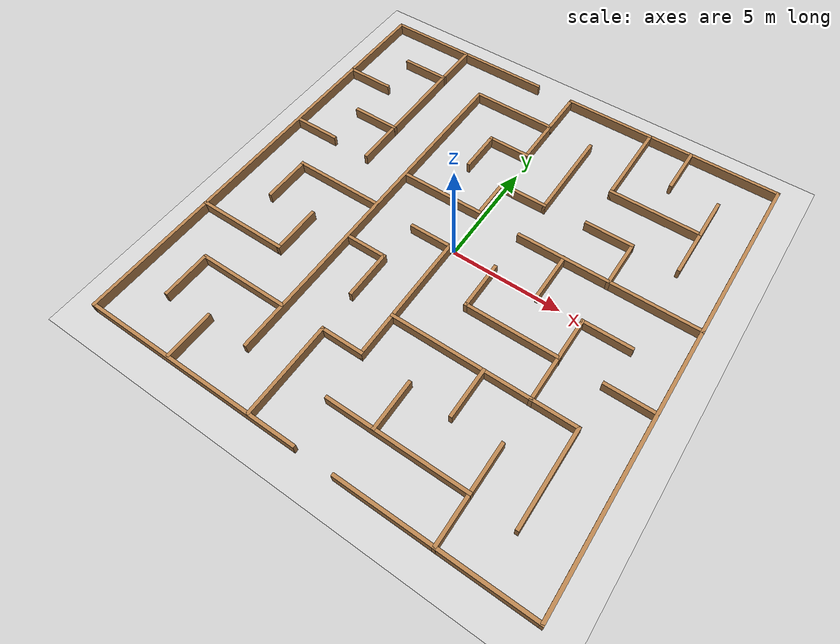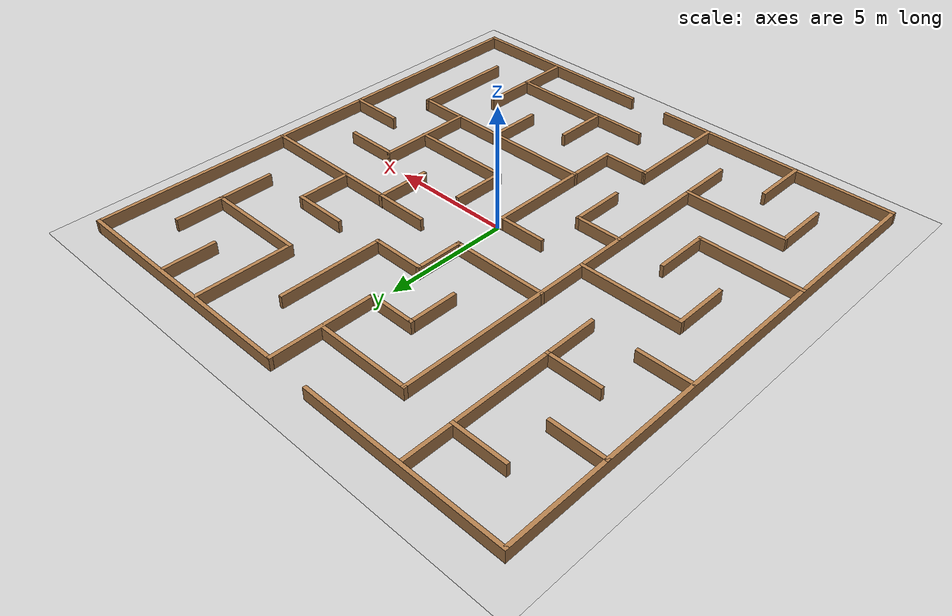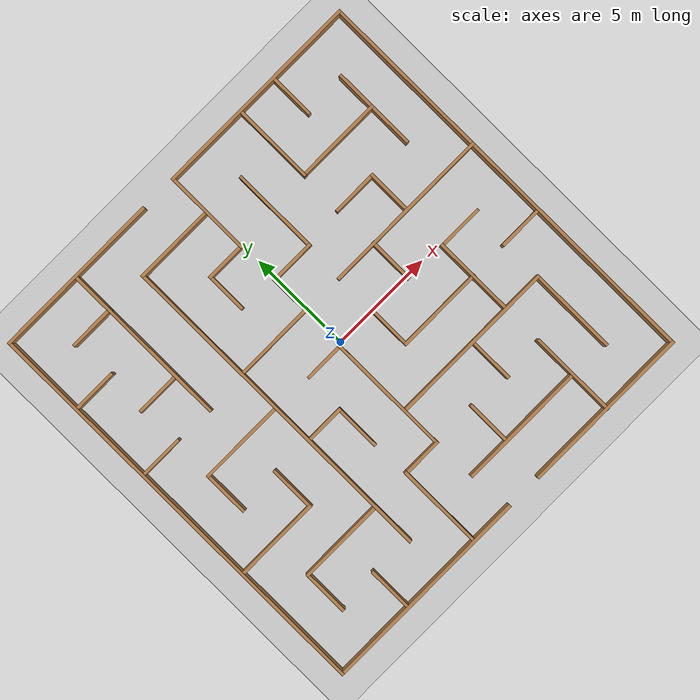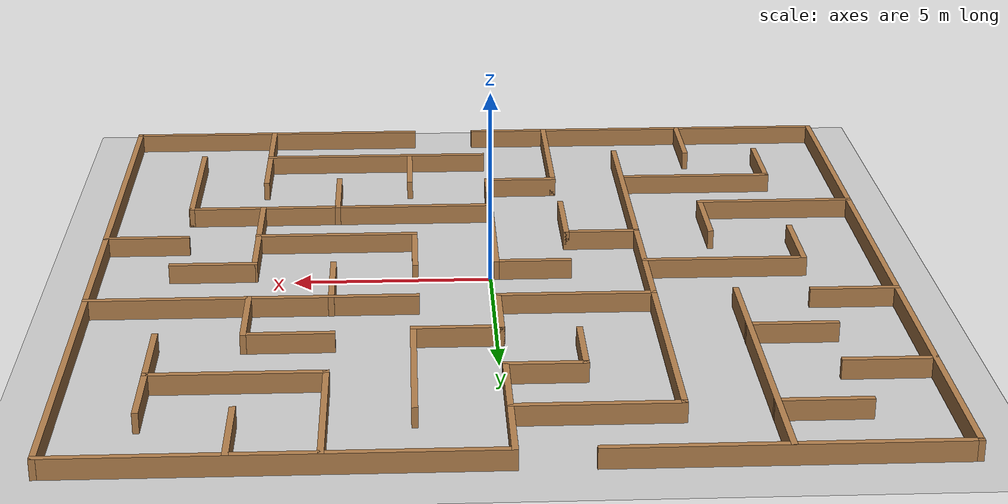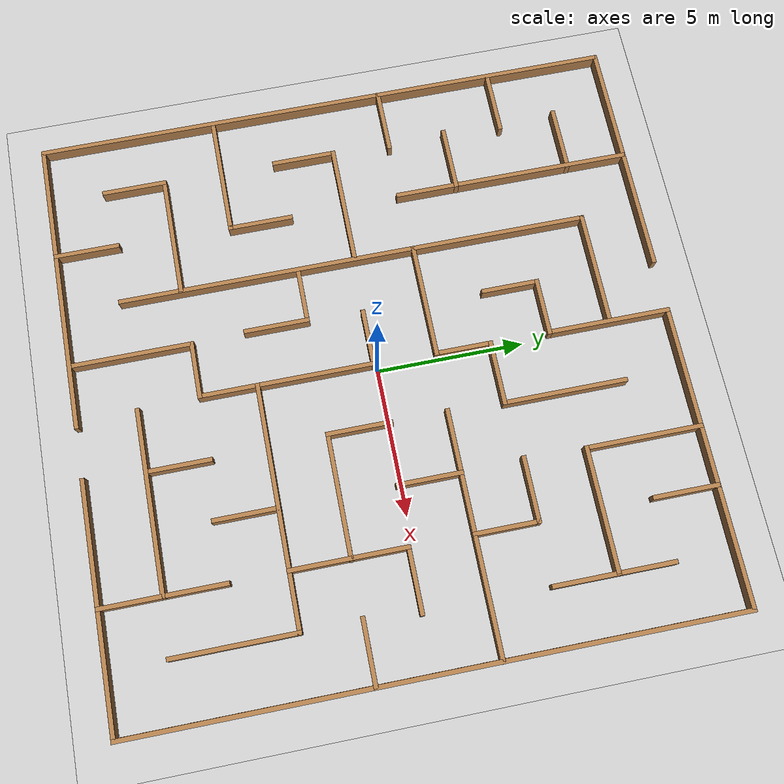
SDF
<?xml version = "1.0" ?>
<!-- Author : Eech Hsiao -->
<!-- hsiaoy4@mcmaster.ca -->

<sdf version = "1.4">

  <world name = "default">

    <include>
      <uri>model://maze_short_textured</uri>
    </include>

    <include>
      <uri>model://ground_plane</uri>
    </include>

    <include>
      <uri>model://sun</uri>
    </include>

    <gui fullscreen ='0'>
      <camera name = 'user_camera'>
        <pose>0.174956 -21.691200 18.658085 0.000000 0.747997 1.567990</pose>
        <view_controller>orbit</view_controller>
      </camera>
    </gui>

  </world>
</sdf>

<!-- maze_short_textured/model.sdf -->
<sdf version='1.6'>
  <model name='maze_short_textured'>
    <pose frame=''>-0.0025 -0.018499 0 0 -0 0</pose>
    <link name='Wall_13'>
      <collision name='Wall_13_Collision'>
        <geometry>
          <box>
            <size>8.25 0.15 0.5</size>
          </box>
        </geometry>
        <pose frame=''>0 0 0.25 0 -0 0</pose>
      </collision>
      <visual name='Wall_13_Visual'>
        <pose frame=''>0 0 0.25 0 -0 0</pose>
        <geometry>
          <box>
            <size>8.25 0.15 0.5</size>
          </box>
        </geometry>
        <material>
          <script>
            <uri>file://media/materials/scripts/gazebo.material</uri>
            <name>Gazebo/Wood</name>
          </script>
          <ambient>1 1 1 1</ambient>
        </material>
        <meta>
          <layer>0</layer>
        </meta>
      </visual>
      <pose frame=''>-5.9605 10.0595 0 0 -0 0</pose>
    </link>
    <link name='Wall_15'>
      <collision name='Wall_15_Collision'>
        <geometry>
          <box>
            <size>10.25 0.15 0.5</size>
          </box>
        </geometry>
        <pose frame=''>0 0 0.25 0 -0 0</pose>
      </collision>
      <visual name='Wall_15_Visual'>
        <pose frame=''>0 0 0.25 0 -0 0</pose>
        <geometry>
          <box>
            <size>10.25 0.15 0.5</size>
          </box>
        </geometry>
        <material>
          <script>
            <uri>file://media/materials/scripts/gazebo.material</uri>
            <name>Gazebo/Wood</name>
          </script>
          <ambient>1 1 1 1</ambient>
        </material>
        <meta>
          <layer>0</layer>
        </meta>
      </visual>
      <pose frame=''>4.9565 10.0435 0 0 -0 3.14159</pose>
    </link>
    <link name='Wall_16'>
      <collision name='Wall_16_Collision'>
        <geometry>
          <box>
            <size>4.25 0.15 0.5</size>
          </box>
        </geometry>
        <pose frame=''>0 0 0.25 0 -0 0</pose>
      </collision>
      <visual name='Wall_16_Visual'>
        <pose frame=''>0 0 0.25 0 -0 0</pose>
        <geometry>
          <box>
            <size>4.25 0.15 0.5</size>
          </box>
        </geometry>
        <material>
          <script>
            <uri>file://media/materials/scripts/gazebo.material</uri>
            <name>Gazebo/Wood</name>
          </script>
          <ambient>1 1 1 1</ambient>
        </material>
        <meta>
          <layer>0</layer>
        </meta>
      </visual>
      <pose frame=''>-0.0935 7.9935 0 0 -0 -1.5708</pose>
    </link>
    <link name='Wall_17'>
      <collision name='Wall_17_Collision'>
        <geometry>
          <box>
            <size>2 0.15 0.5</size>
          </box>
        </geometry>
        <pose frame=''>0 0 0.25 0 -0 0</pose>
      </collision>
      <visual name='Wall_17_Visual'>
        <pose frame=''>0 0 0.25 0 -0 0</pose>
        <geometry>
          <box>
            <size>2 0.15 0.5</size>
          </box>
        </geometry>
        <material>
          <script>
            <uri>file://media/materials/scripts/gazebo.material</uri>
            <name>Gazebo/Wood</name>
          </script>
          <ambient>1 1 1 1</ambient>
        </material>
        <meta>
          <layer>0</layer>
        </meta>
      </visual>
      <pose frame=''>-1.0185 5.9435 0 0 -0 3.14159</pose>
    </link>
    <link name='Wall_18'>
      <collision name='Wall_18_Collision'>
        <geometry>
          <box>
            <size>2 0.15 0.5</size>
          </box>
        </geometry>
        <pose frame=''>0 0 0.25 0 -0 0</pose>
      </collision>
      <visual name='Wall_18_Visual'>
        <pose frame=''>0 0 0.25 0 -0 0</pose>
        <geometry>
          <box>
            <size>2 0.15 0.5</size>
          </box>
        </geometry>
        <material>
          <script>
            <uri>file://media/materials/scripts/gazebo.material</uri>
            <name>Gazebo/Wood</name>
          </script>
          <ambient>1 1 1 1</ambient>
        </material>
        <meta>
          <layer>0</layer>
        </meta>
      </visual>
      <pose frame=''>-1.9435 5.0185 0 0 -0 -1.5708</pose>
    </link>
    <link name='Wall_2'>
      <collision name='Wall_2_Collision'>
        <geometry>
          <box>
            <size>20.25 0.15 0.5</size>
          </box>
        </geometry>
        <pose frame=''>0 0 0.25 0 -0 0</pose>
      </collision>
      <visual name='Wall_2_Visual'>
        <pose frame=''>0 0 0.25 0 -0 0</pose>
        <geometry>
          <box>
            <size>20.25 0.15 0.5</size>
          </box>
        </geometry>
        <material>
          <script>
            <uri>file://media/materials/scripts/gazebo.material</uri>
            <name>Gazebo/Wood</name>
          </script>
          <ambient>1 1 1 1</ambient>
        </material>
        <meta>
          <layer>0</layer>
        </meta>
      </visual>
      <pose frame=''>-10.0105 0.009499 0 0 -0 1.5708</pose>
    </link>
    <link name='Wall_20'>
      <collision name='Wall_20_Collision'>
        <geometry>
          <box>
            <size>8.25 0.15 0.5</size>
          </box>
        </geometry>
        <pose frame=''>0 0 0.25 0 -0 0</pose>
      </collision>
      <visual name='Wall_20_Visual'>
        <pose frame=''>0 0 0.25 0 -0 0</pose>
        <geometry>
          <box>
            <size>8.25 0.15 0.5</size>
          </box>
        </geometry>
        <material>
          <script>
            <uri>file://media/materials/scripts/gazebo.material</uri>
            <name>Gazebo/Wood</name>
          </script>
          <ambient>1 1 1 1</ambient>
        </material>
        <meta>
          <layer>0</layer>
        </meta>
      </visual>
      <pose frame=''>-6.0045 6.0065 0 0 -0 -1.5708</pose>
    </link>
    <link name='Wall_28'>
      <collision name='Wall_28_Collision'>
        <geometry>
          <box>
            <size>2.25 0.15 0.5</size>
          </box>
        </geometry>
        <pose frame=''>0 0 0.25 0 -0 0</pose>
      </collision>
      <visual name='Wall_28_Visual'>
        <pose frame=''>0 0 0.25 0 -0 0</pose>
        <geometry>
          <box>
            <size>2.25 0.15 0.5</size>
          </box>
        </geometry>
        <material>
          <script>
            <uri>file://media/materials/scripts/gazebo.material</uri>
            <name>Gazebo/Wood</name>
          </script>
          <ambient>1 1 1 1</ambient>
        </material>
        <meta>
          <layer>0</layer>
        </meta>
      </visual>
      <pose frame=''>-7.0515 8.0235 0 0 -0 3.14159</pose>
    </link>
    <link name='Wall_30'>
      <collision name='Wall_30_Collision'>
        <geometry>
          <box>
            <size>2.25 0.15 0.5</size>
          </box>
        </geometry>
        <pose frame=''>0 0 0.25 0 -0 0</pose>
      </collision>
      <visual name='Wall_30_Visual'>
        <pose frame=''>0 0 0.25 0 -0 0</pose>
        <geometry>
          <box>
            <size>2.25 0.15 0.5</size>
          </box>
        </geometry>
        <material>
          <script>
            <uri>file://media/materials/scripts/gazebo.material</uri>
            <name>Gazebo/Wood</name>
          </script>
          <ambient>1 1 1 1</ambient>
        </material>
        <meta>
          <layer>0</layer>
        </meta>
      </visual>
      <pose frame=''>-7.0495 4.0155 0 0 -0 3.14159</pose>
    </link>
    <link name='Wall_32'>
      <collision name='Wall_32_Collision'>
        <geometry>
          <box>
            <size>2.25 0.15 0.5</size>
          </box>
        </geometry>
        <pose frame=''>0 0 0.25 0 -0 0</pose>
      </collision>
      <visual name='Wall_32_Visual'>
        <pose frame=''>0 0 0.25 0 -0 0</pose>
        <geometry>
          <box>
            <size>2.25 0.15 0.5</size>
          </box>
        </geometry>
        <material>
          <script>
            <uri>file://media/materials/scripts/gazebo.material</uri>
            <name>Gazebo/Wood</name>
          </script>
          <ambient>1 1 1 1</ambient>
        </material>
        <meta>
          <layer>0</layer>
        </meta>
      </visual>
      <pose frame=''>-8.9485 6.0295 0 0 -0 0</pose>
    </link>
    <link name='Wall_34'>
      <collision name='Wall_34_Collision'>
        <geometry>
          <box>
            <size>2.25 0.15 0.5</size>
          </box>
        </geometry>
        <pose frame=''>0 0 0.25 0 -0 0</pose>
      </collision>
      <visual name='Wall_34_Visual'>
        <pose frame=''>0 0 0.25 0 -0 0</pose>
        <geometry>
          <box>
            <size>2.25 0.15 0.5</size>
          </box>
        </geometry>
        <material>
          <script>
            <uri>file://media/materials/scripts/gazebo.material</uri>
            <name>Gazebo/Wood</name>
          </script>
          <ambient>1 1 1 1</ambient>
        </material>
        <meta>
          <layer>0</layer>
        </meta>
      </visual>
      <pose frame=''>-8.9585 2.0095 0 0 -0 0</pose>
    </link>
    <link name='Wall_36'>
      <collision name='Wall_36_Collision'>
        <geometry>
          <box>
            <size>4.25 0.15 0.5</size>
          </box>
        </geometry>
        <pose frame=''>0 0 0.25 0 -0 0</pose>
      </collision>
      <visual name='Wall_36_Visual'>
        <pose frame=''>0 0 0.25 0 -0 0</pose>
        <geometry>
          <box>
            <size>4.25 0.15 0.5</size>
          </box>
        </geometry>
        <material>
          <script>
            <uri>file://media/materials/scripts/gazebo.material</uri>
            <name>Gazebo/Wood</name>
          </script>
          <ambient>1 1 1 1</ambient>
        </material>
        <meta>
          <layer>0</layer>
        </meta>
      </visual>
      <pose frame=''>-7.9585 -3.9925 0 0 -0 0</pose>
    </link>
    <link name='Wall_37'>
      <collision name='Wall_37_Collision'>
        <geometry>
          <box>
            <size>2.25 0.15 0.5</size>
          </box>
        </geometry>
        <pose frame=''>0 0 0.25 0 -0 0</pose>
      </collision>
      <visual name='Wall_37_Visual'>
        <pose frame=''>0 0 0.25 0 -0 0</pose>
        <geometry>
          <box>
            <size>2.25 0.15 0.5</size>
          </box>
        </geometry>
        <material>
          <script>
            <uri>file://media/materials/scripts/gazebo.material</uri>
            <name>Gazebo/Wood</name>
          </script>
          <ambient>1 1 1 1</ambient>
        </material>
        <meta>
          <layer>0</layer>
        </meta>
      </visual>
      <pose frame=''>-5.9085 -2.9425 0 0 -0 1.5708</pose>
    </link>
    <link name='Wall_4'>
      <collision name='Wall_4_Collision'>
        <geometry>
          <box>
            <size>10.25 0.15 0.5</size>
          </box>
        </geometry>
        <pose frame=''>0 0 0.25 0 -0 0</pose>
      </collision>
      <visual name='Wall_4_Visual'>
        <pose frame=''>0 0 0.25 0 -0 0</pose>
        <geometry>
          <box>
            <size>10.25 0.15 0.5</size>
          </box>
        </geometry>
        <material>
          <script>
            <uri>file://media/materials/scripts/gazebo.material</uri>
            <name>Gazebo/Wood</name>
          </script>
          <ambient>1 1 1 1</ambient>
        </material>
        <meta>
          <layer>0</layer>
        </meta>
      </visual>
      <pose frame=''>-4.9605 -10.0405 0 0 -0 0</pose>
    </link>
    <link name='Wall_41'>
      <collision name='Wall_41_Collision'>
        <geometry>
          <box>
            <size>4 0.15 0.5</size>
          </box>
        </geometry>
        <pose frame=''>0 0 0.25 0 -0 0</pose>
      </collision>
      <visual name='Wall_41_Visual'>
        <pose frame=''>0 0 0.25 0 -0 0</pose>
        <geometry>
          <box>
            <size>4 0.15 0.5</size>
          </box>
        </geometry>
        <material>
          <script>
            <uri>file://media/materials/scripts/gazebo.material</uri>
            <name>Gazebo/Wood</name>
          </script>
          <ambient>1 1 1 1</ambient>
        </material>
        <meta>
          <layer>0</layer>
        </meta>
      </visual>
      <pose frame=''>-2.0185 8.0325 0 0 -0 3.14159</pose>
    </link>
    <link name='Wall_42'>
      <collision name='Wall_42_Collision'>
        <geometry>
          <box>
            <size>16.25 0.15 0.5</size>
          </box>
        </geometry>
        <pose frame=''>0 0 0.25 0 -0 0</pose>
      </collision>
      <visual name='Wall_42_Visual'>
        <pose frame=''>0 0 0.25 0 -0 0</pose>
        <geometry>
          <box>
            <size>16.25 0.15 0.5</size>
          </box>
        </geometry>
        <material>
          <script>
            <uri>file://media/materials/scripts/gazebo.material</uri>
            <name>Gazebo/Wood</name>
          </script>
          <ambient>1 1 1 1</ambient>
        </material>
        <meta>
          <layer>0</layer>
        </meta>
      </visual>
      <pose frame=''>-3.9435 -0.017501 0 0 -0 -1.5708</pose>
    </link>
    <link name='Wall_44'>
      <collision name='Wall_44_Collision'>
        <geometry>
          <box>
            <size>4.25 0.15 0.5</size>
          </box>
        </geometry>
        <pose frame=''>0 0 0.25 0 -0 0</pose>
      </collision>
      <visual name='Wall_44_Visual'>
        <pose frame=''>0 0 0.25 0 -0 0</pose>
        <geometry>
          <box>
            <size>4.25 0.15 0.5</size>
          </box>
        </geometry>
        <material>
          <script>
            <uri>file://media/materials/scripts/gazebo.material</uri>
            <name>Gazebo/Wood</name>
          </script>
          <ambient>1 1 1 1</ambient>
        </material>
        <meta>
          <layer>0</layer>
        </meta>
      </visual>
      <pose frame=''>-6.0055 -6.0065 0 0 -0 3.14159</pose>
    </link>
    <link name='Wall_45'>
      <collision name='Wall_45_Collision'>
        <geometry>
          <box>
            <size>2.25 0.15 0.5</size>
          </box>
        </geometry>
        <pose frame=''>0 0 0.25 0 -0 0</pose>
      </collision>
      <visual name='Wall_45_Visual'>
        <pose frame=''>0 0 0.25 0 -0 0</pose>
        <geometry>
          <box>
            <size>2.25 0.15 0.5</size>
          </box>
        </geometry>
        <material>
          <script>
            <uri>file://media/materials/scripts/gazebo.material</uri>
            <name>Gazebo/Wood</name>
          </script>
          <ambient>1 1 1 1</ambient>
        </material>
        <meta>
          <layer>0</layer>
        </meta>
      </visual>
      <pose frame=''>-8.0555 -7.0565 0 0 -0 -1.5708</pose>
    </link>
    <link name='Wall_47'>
      <collision name='Wall_47_Collision'>
        <geometry>
          <box>
            <size>2.25 0.15 0.5</size>
          </box>
        </geometry>
        <pose frame=''>0 0 0.25 0 -0 0</pose>
      </collision>
      <visual name='Wall_47_Visual'>
        <pose frame=''>0 0 0.25 0 -0 0</pose>
        <geometry>
          <box>
            <size>2.25 0.15 0.5</size>
          </box>
        </geometry>
        <material>
          <script>
            <uri>file://media/materials/scripts/gazebo.material</uri>
            <name>Gazebo/Wood</name>
          </script>
          <ambient>1 1 1 1</ambient>
        </material>
        <meta>
          <layer>0</layer>
        </meta>
      </visual>
      <pose frame=''>-6.0065 -8.9795 0 0 -0 1.5708</pose>
    </link>
    <link name='Wall_49'>
      <collision name='Wall_49_Collision'>
        <geometry>
          <box>
            <size>4.25 0.15 0.5</size>
          </box>
        </geometry>
        <pose frame=''>0 0 0.25 0 -0 0</pose>
      </collision>
      <visual name='Wall_49_Visual'>
        <pose frame=''>0 0 0.25 0 -0 0</pose>
        <geometry>
          <box>
            <size>4.25 0.15 0.5</size>
          </box>
        </geometry>
        <material>
          <script>
            <uri>file://media/materials/scripts/gazebo.material</uri>
            <name>Gazebo/Wood</name>
          </script>
          <ambient>1 1 1 1</ambient>
        </material>
        <meta>
          <layer>0</layer>
        </meta>
      </visual>
      <pose frame=''>-5.9985 0.011499 0 0 -0 3.14159</pose>
    </link>
    <link name='Wall_50'>
      <collision name='Wall_50_Collision'>
        <geometry>
          <box>
            <size>2.25 0.15 0.5</size>
          </box>
        </geometry>
        <pose frame=''>0 0 0.25 0 -0 0</pose>
      </collision>
      <visual name='Wall_50_Visual'>
        <pose frame=''>0 0 0.25 0 -0 0</pose>
        <geometry>
          <box>
            <size>2.25 0.15 0.5</size>
          </box>
        </geometry>
        <material>
          <script>
            <uri>file://media/materials/scripts/gazebo.material</uri>
            <name>Gazebo/Wood</name>
          </script>
          <ambient>1 1 1 1</ambient>
        </material>
        <meta>
          <layer>0</layer>
        </meta>
      </visual>
      <pose frame=''>-8.0485 -1.0385 0 0 -0 -1.5708</pose>
    </link>
    <link name='Wall_52'>
      <collision name='Wall_52_Collision'>
        <geometry>
          <box>
            <size>4 0.15 0.5</size>
          </box>
        </geometry>
        <pose frame=''>0 0 0.25 0 -0 0</pose>
      </collision>
      <visual name='Wall_52_Visual'>
        <pose frame=''>0 0 0.25 0 -0 0</pose>
        <geometry>
          <box>
            <size>4 0.15 0.5</size>
          </box>
        </geometry>
        <material>
          <script>
            <uri>file://media/materials/scripts/gazebo.material</uri>
            <name>Gazebo/Wood</name>
          </script>
          <ambient>1 1 1 1</ambient>
        </material>
        <meta>
          <layer>0</layer>
        </meta>
      </visual>
      <pose frame=''>-2.0205 2.0605 0 0 -0 0</pose>
    </link>
    <link name='Wall_53'>
      <collision name='Wall_53_Collision'>
        <geometry>
          <box>
            <size>2 0.15 0.5</size>
          </box>
        </geometry>
        <pose frame=''>0 0 0.25 0 -0 0</pose>
      </collision>
      <visual name='Wall_53_Visual'>
        <pose frame=''>0 0 0.25 0 -0 0</pose>
        <geometry>
          <box>
            <size>2 0.15 0.5</size>
          </box>
        </geometry>
        <material>
          <script>
            <uri>file://media/materials/scripts/gazebo.material</uri>
            <name>Gazebo/Wood</name>
          </script>
          <ambient>1 1 1 1</ambient>
        </material>
        <meta>
          <layer>0</layer>
        </meta>
      </visual>
      <pose frame=''>-0.0955 2.9855 0 0 -0 1.5708</pose>
    </link>
    <link name='Wall_54'>
      <collision name='Wall_54_Collision'>
        <geometry>
          <box>
            <size>2.25 0.15 0.5</size>
          </box>
        </geometry>
        <pose frame=''>0 0 0.25 0 -0 0</pose>
      </collision>
      <visual name='Wall_54_Visual'>
        <pose frame=''>0 0 0.25 0 -0 0</pose>
        <geometry>
          <box>
            <size>2.25 0.15 0.5</size>
          </box>
        </geometry>
        <material>
          <script>
            <uri>file://media/materials/scripts/gazebo.material</uri>
            <name>Gazebo/Wood</name>
          </script>
          <ambient>1 1 1 1</ambient>
        </material>
        <meta>
          <layer>0</layer>
        </meta>
      </visual>
      <pose frame=''>0.9545 3.9105 0 0 -0 0</pose>
    </link>
    <link name='Wall_55'>
      <collision name='Wall_55_Collision'>
        <geometry>
          <box>
            <size>4.25 0.15 0.5</size>
          </box>
        </geometry>
        <pose frame=''>0 0 0.25 0 -0 0</pose>
      </collision>
      <visual name='Wall_55_Visual'>
        <pose frame=''>0 0 0.25 0 -0 0</pose>
        <geometry>
          <box>
            <size>4.25 0.15 0.5</size>
          </box>
        </geometry>
        <material>
          <script>
            <uri>file://media/materials/scripts/gazebo.material</uri>
            <name>Gazebo/Wood</name>
          </script>
          <ambient>1 1 1 1</ambient>
        </material>
        <meta>
          <layer>0</layer>
        </meta>
      </visual>
      <pose frame=''>2.0045 5.9605 0 0 -0 1.5708</pose>
    </link>
    <link name='Wall_57'>
      <collision name='Wall_57_Collision'>
        <geometry>
          <box>
            <size>4 0.15 0.5</size>
          </box>
        </geometry>
        <pose frame=''>0 0 0.25 0 -0 0</pose>
      </collision>
      <visual name='Wall_57_Visual'>
        <pose frame=''>0 0 0.25 0 -0 0</pose>
        <geometry>
          <box>
            <size>4 0.15 0.5</size>
          </box>
        </geometry>
        <material>
          <script>
            <uri>file://media/materials/scripts/gazebo.material</uri>
            <name>Gazebo/Wood</name>
          </script>
          <ambient>1 1 1 1</ambient>
        </material>
        <meta>
          <layer>0</layer>
        </meta>
      </visual>
      <pose frame=''>3.9985 8.1095 0 0 -0 -1.5708</pose>
    </link>
    <link name='Wall_58'>
      <collision name='Wall_58_Collision'>
        <geometry>
          <box>
            <size>4.25 0.15 0.5</size>
          </box>
        </geometry>
        <pose frame=''>0 0 0.25 0 -0 0</pose>
      </collision>
      <visual name='Wall_58_Visual'>
        <pose frame=''>0 0 0.25 0 -0 0</pose>
        <geometry>
          <box>
            <size>4.25 0.15 0.5</size>
          </box>
        </geometry>
        <material>
          <script>
            <uri>file://media/materials/scripts/gazebo.material</uri>
            <name>Gazebo/Wood</name>
          </script>
          <ambient>1 1 1 1</ambient>
        </material>
        <meta>
          <layer>0</layer>
        </meta>
      </visual>
      <pose frame=''>6.0485 6.1845 0 0 -0 0</pose>
    </link>
    <link name='Wall_59'>
      <collision name='Wall_59_Collision'>
        <geometry>
          <box>
            <size>2 0.15 0.5</size>
          </box>
        </geometry>
        <pose frame=''>0 0 0.25 0 -0 0</pose>
      </collision>
      <visual name='Wall_59_Visual'>
        <pose frame=''>0 0 0.25 0 -0 0</pose>
        <geometry>
          <box>
            <size>2 0.15 0.5</size>
          </box>
        </geometry>
        <material>
          <script>
            <uri>file://media/materials/scripts/gazebo.material</uri>
            <name>Gazebo/Wood</name>
          </script>
          <ambient>1 1 1 1</ambient>
        </material>
        <meta>
          <layer>0</layer>
        </meta>
      </visual>
      <pose frame=''>8.0985 7.1095 0 0 -0 1.5708</pose>
    </link>
    <link name='Wall_6'>
      <collision name='Wall_6_Collision'>
        <geometry>
          <box>
            <size>8.25 0.15 0.5</size>
          </box>
        </geometry>
        <pose frame=''>0 0 0.25 0 -0 0</pose>
      </collision>
      <visual name='Wall_6_Visual'>
        <pose frame=''>0 0 0.25 0 -0 0</pose>
        <geometry>
          <box>
            <size>8.25 0.15 0.5</size>
          </box>
        </geometry>
        <material>
          <script>
            <uri>file://media/materials/scripts/gazebo.material</uri>
            <name>Gazebo/Wood</name>
          </script>
          <ambient>1 1 1 1</ambient>
        </material>
        <meta>
          <layer>0</layer>
        </meta>
      </visual>
      <pose frame=''>5.9565 -10.0565 0 0 -0 0</pose>
    </link>
    <link name='Wall_61'>
      <collision name='Wall_61_Collision'>
        <geometry>
          <box>
            <size>2.25 0.15 0.5</size>
          </box>
        </geometry>
        <pose frame=''>0 0 0.25 0 -0 0</pose>
      </collision>
      <visual name='Wall_61_Visual'>
        <pose frame=''>0 0 0.25 0 -0 0</pose>
        <geometry>
          <box>
            <size>2.25 0.15 0.5</size>
          </box>
        </geometry>
        <material>
          <script>
            <uri>file://media/materials/scripts/gazebo.material</uri>
            <name>Gazebo/Wood</name>
          </script>
          <ambient>1 1 1 1</ambient>
        </material>
        <meta>
          <layer>0</layer>
        </meta>
      </visual>
      <pose frame=''>8.0985 5.1345 0 0 -0 -1.5708</pose>
    </link>
    <link name='Wall_63'>
      <collision name='Wall_63_Collision'>
        <geometry>
          <box>
            <size>2.25 0.15 0.5</size>
          </box>
        </geometry>
        <pose frame=''>0 0 0.25 0 -0 0</pose>
      </collision>
      <visual name='Wall_63_Visual'>
        <pose frame=''>0 0 0.25 0 -0 0</pose>
        <geometry>
          <box>
            <size>2.25 0.15 0.5</size>
          </box>
        </geometry>
        <material>
          <script>
            <uri>file://media/materials/scripts/gazebo.material</uri>
            <name>Gazebo/Wood</name>
          </script>
          <ambient>1 1 1 1</ambient>
        </material>
        <meta>
          <layer>0</layer>
        </meta>
      </visual>
      <pose frame=''>5.9955 8.9855 0 0 -0 -1.5708</pose>
    </link>
    <link name='Wall_65'>
      <collision name='Wall_65_Collision'>
        <geometry>
          <box>
            <size>8.25 0.15 0.5</size>
          </box>
        </geometry>
        <pose frame=''>0 0 0.25 0 -0 0</pose>
      </collision>
      <visual name='Wall_65_Visual'>
        <pose frame=''>0 0 0.25 0 -0 0</pose>
        <geometry>
          <box>
            <size>8.25 0.15 0.5</size>
          </box>
        </geometry>
        <material>
          <script>
            <uri>file://media/materials/scripts/gazebo.material</uri>
            <name>Gazebo/Wood</name>
          </script>
          <ambient>1 1 1 1</ambient>
        </material>
        <meta>
          <layer>0</layer>
        </meta>
      </visual>
      <pose frame=''>5.9605 2.0025 0 0 -0 3.14159</pose>
    </link>
    <link name='Wall_67'>
      <collision name='Wall_67_Collision'>
        <geometry>
          <box>
            <size>2.25 0.15 0.5</size>
          </box>
        </geometry>
        <pose frame=''>0 0 0.25 0 -0 0</pose>
      </collision>
      <visual name='Wall_67_Visual'>
        <pose frame=''>0 0 0.25 0 -0 0</pose>
        <geometry>
          <box>
            <size>2.25 0.15 0.5</size>
          </box>
        </geometry>
        <material>
          <script>
            <uri>file://media/materials/scripts/gazebo.material</uri>
            <name>Gazebo/Wood</name>
          </script>
          <ambient>1 1 1 1</ambient>
        </material>
        <meta>
          <layer>0</layer>
        </meta>
      </visual>
      <pose frame=''>4.0045 0.961499 0 0 -0 -1.5708</pose>
    </link>
    <link name='Wall_69'>
      <collision name='Wall_69_Collision'>
        <geometry>
          <box>
            <size>2.25 0.15 0.5</size>
          </box>
        </geometry>
        <pose frame=''>0 0 0.25 0 -0 0</pose>
      </collision>
      <visual name='Wall_69_Visual'>
        <pose frame=''>0 0 0.25 0 -0 0</pose>
        <geometry>
          <box>
            <size>2.25 0.15 0.5</size>
          </box>
        </geometry>
        <material>
          <script>
            <uri>file://media/materials/scripts/gazebo.material</uri>
            <name>Gazebo/Wood</name>
          </script>
          <ambient>1 1 1 1</ambient>
        </material>
        <meta>
          <layer>0</layer>
        </meta>
      </visual>
      <pose frame=''>6.0245 3.0515 0 0 -0 1.5708</pose>
    </link>
    <link name='Wall_7'>
      <collision name='Wall_7_Collision'>
        <geometry>
          <box>
            <size>20.25 0.15 0.5</size>
          </box>
        </geometry>
        <pose frame=''>0 0 0.25 0 -0 0</pose>
      </collision>
      <visual name='Wall_7_Visual'>
        <pose frame=''>0 0 0.25 0 -0 0</pose>
        <geometry>
          <box>
            <size>20.25 0.15 0.5</size>
          </box>
        </geometry>
        <material>
          <script>
            <uri>file://media/materials/scripts/gazebo.material</uri>
            <name>Gazebo/Wood</name>
          </script>
          <ambient>1 1 1 1</ambient>
        </material>
        <meta>
          <layer>0</layer>
        </meta>
      </visual>
      <pose frame=''>10.0065 -0.006501 0 0 -0 1.5708</pose>
    </link>
    <link name='Wall_70'>
      <collision name='Wall_70_Collision'>
        <geometry>
          <box>
            <size>2.25 0.15 0.5</size>
          </box>
        </geometry>
        <pose frame=''>0 0 0.25 0 -0 0</pose>
      </collision>
      <visual name='Wall_70_Visual'>
        <pose frame=''>0 0 0.25 0 -0 0</pose>
        <geometry>
          <box>
            <size>2.25 0.15 0.5</size>
          </box>
        </geometry>
        <material>
          <script>
            <uri>file://media/materials/scripts/gazebo.material</uri>
            <name>Gazebo/Wood</name>
          </script>
          <ambient>1 1 1 1</ambient>
        </material>
        <meta>
          <layer>0</layer>
        </meta>
      </visual>
      <pose frame=''>4.9745 4.1015 0 0 -0 3.14159</pose>
    </link>
    <link name='Wall_72'>
      <collision name='Wall_72_Collision'>
        <geometry>
          <box>
            <size>4.25 0.15 0.5</size>
          </box>
        </geometry>
        <pose frame=''>0 0 0.25 0 -0 0</pose>
      </collision>
      <visual name='Wall_72_Visual'>
        <pose frame=''>0 0 0.25 0 -0 0</pose>
        <geometry>
          <box>
            <size>4.25 0.15 0.5</size>
          </box>
        </geometry>
        <material>
          <script>
            <uri>file://media/materials/scripts/gazebo.material</uri>
            <name>Gazebo/Wood</name>
          </script>
          <ambient>1 1 1 1</ambient>
        </material>
        <meta>
          <layer>0</layer>
        </meta>
      </visual>
      <pose frame=''>-2.0005 -7.9745 0 0 -0 1.5708</pose>
    </link>
    <link name='Wall_73'>
      <collision name='Wall_73_Collision'>
        <geometry>
          <box>
            <size>2 0.15 0.5</size>
          </box>
        </geometry>
        <pose frame=''>0 0 0.25 0 -0 0</pose>
      </collision>
      <visual name='Wall_73_Visual'>
        <pose frame=''>0 0 0.25 0 -0 0</pose>
        <geometry>
          <box>
            <size>2 0.15 0.5</size>
          </box>
        </geometry>
        <material>
          <script>
            <uri>file://media/materials/scripts/gazebo.material</uri>
            <name>Gazebo/Wood</name>
          </script>
          <ambient>1 1 1 1</ambient>
        </material>
        <meta>
          <layer>0</layer>
        </meta>
      </visual>
      <pose frame=''>-1.0755 -5.9245 0 0 -0 0</pose>
    </link>
    <link name='Wall_74'>
      <collision name='Wall_74_Collision'>
        <geometry>
          <box>
            <size>6 0.15 0.5</size>
          </box>
        </geometry>
        <pose frame=''>0 0 0.25 0 -0 0</pose>
      </collision>
      <visual name='Wall_74_Visual'>
        <pose frame=''>0 0 0.25 0 -0 0</pose>
        <geometry>
          <box>
            <size>6 0.15 0.5</size>
          </box>
        </geometry>
        <material>
          <script>
            <uri>file://media/materials/scripts/gazebo.material</uri>
            <name>Gazebo/Wood</name>
          </script>
          <ambient>1 1 1 1</ambient>
        </material>
        <meta>
          <layer>0</layer>
        </meta>
      </visual>
      <pose frame=''>-0.1505 -2.9995 0 0 -0 1.5708</pose>
    </link>
    <link name='Wall_75'>
      <collision name='Wall_75_Collision'>
        <geometry>
          <box>
            <size>2 0.15 0.5</size>
          </box>
        </geometry>
        <pose frame=''>0 0 0.25 0 -0 0</pose>
      </collision>
      <visual name='Wall_75_Visual'>
        <pose frame=''>0 0 0.25 0 -0 0</pose>
        <geometry>
          <box>
            <size>2 0.15 0.5</size>
          </box>
        </geometry>
        <material>
          <script>
            <uri>file://media/materials/scripts/gazebo.material</uri>
            <name>Gazebo/Wood</name>
          </script>
          <ambient>1 1 1 1</ambient>
        </material>
        <meta>
          <layer>0</layer>
        </meta>
      </visual>
      <pose frame=''>-1.0755 -0.074501 0 0 -0 3.14159</pose>
    </link>
    <link name='Wall_77'>
      <collision name='Wall_77_Collision'>
        <geometry>
          <box>
            <size>2 0.15 0.5</size>
          </box>
        </geometry>
        <pose frame=''>0 0 0.25 0 -0 0</pose>
      </collision>
      <visual name='Wall_77_Visual'>
        <pose frame=''>0 0 0.25 0 -0 0</pose>
        <geometry>
          <box>
            <size>2 0.15 0.5</size>
          </box>
        </geometry>
        <material>
          <script>
            <uri>file://media/materials/scripts/gazebo.material</uri>
            <name>Gazebo/Wood</name>
          </script>
          <ambient>1 1 1 1</ambient>
        </material>
        <meta>
          <layer>0</layer>
        </meta>
      </visual>
      <pose frame=''>-3.0095 -1.9745 0 0 -0 0</pose>
    </link>
    <link name='Wall_78'>
      <collision name='Wall_78_Collision'>
        <geometry>
          <box>
            <size>2.25 0.15 0.5</size>
          </box>
        </geometry>
        <pose frame=''>0 0 0.25 0 -0 0</pose>
      </collision>
      <visual name='Wall_78_Visual'>
        <pose frame=''>0 0 0.25 0 -0 0</pose>
        <geometry>
          <box>
            <size>2.25 0.15 0.5</size>
          </box>
        </geometry>
        <material>
          <script>
            <uri>file://media/materials/scripts/gazebo.material</uri>
            <name>Gazebo/Wood</name>
          </script>
          <ambient>1 1 1 1</ambient>
        </material>
        <meta>
          <layer>0</layer>
        </meta>
      </visual>
      <pose frame=''>-2.0845 -3.0245 0 0 -0 -1.5708</pose>
    </link>
    <link name='Wall_80'>
      <collision name='Wall_80_Collision'>
        <geometry>
          <box>
            <size>4.25 0.15 0.5</size>
          </box>
        </geometry>
        <pose frame=''>0 0 0.25 0 -0 0</pose>
      </collision>
      <visual name='Wall_80_Visual'>
        <pose frame=''>0 0 0.25 0 -0 0</pose>
        <geometry>
          <box>
            <size>4.25 0.15 0.5</size>
          </box>
        </geometry>
        <material>
          <script>
            <uri>file://media/materials/scripts/gazebo.material</uri>
            <name>Gazebo/Wood</name>
          </script>
          <ambient>1 1 1 1</ambient>
        </material>
        <meta>
          <layer>0</layer>
        </meta>
      </visual>
      <pose frame=''>6.0335 -8.0095 0 0 -0 1.5708</pose>
    </link>
    <link name='Wall_82'>
      <collision name='Wall_82_Collision'>
        <geometry>
          <box>
            <size>6.25 0.15 0.5</size>
          </box>
        </geometry>
        <pose frame=''>0 0 0.25 0 -0 0</pose>
      </collision>
      <visual name='Wall_82_Visual'>
        <pose frame=''>0 0 0.25 0 -0 0</pose>
        <geometry>
          <box>
            <size>6.25 0.15 0.5</size>
          </box>
        </geometry>
        <material>
          <script>
            <uri>file://media/materials/scripts/gazebo.material</uri>
            <name>Gazebo/Wood</name>
          </script>
          <ambient>1 1 1 1</ambient>
        </material>
        <meta>
          <layer>0</layer>
        </meta>
      </visual>
      <pose frame=''>2.9835 -8.0065 0 0 -0 3.14159</pose>
    </link>
    <link name='Wall_84'>
      <collision name='Wall_84_Collision'>
        <geometry>
          <box>
            <size>2.25 0.15 0.5</size>
          </box>
        </geometry>
        <pose frame=''>0 0 0.25 0 -0 0</pose>
      </collision>
      <visual name='Wall_84_Visual'>
        <pose frame=''>0 0 0.25 0 -0 0</pose>
        <geometry>
          <box>
            <size>2.25 0.15 0.5</size>
          </box>
        </geometry>
        <material>
          <script>
            <uri>file://media/materials/scripts/gazebo.material</uri>
            <name>Gazebo/Wood</name>
          </script>
          <ambient>1 1 1 1</ambient>
        </material>
        <meta>
          <layer>0</layer>
        </meta>
      </visual>
      <pose frame=''>2.0215 -6.9455 0 0 -0 1.5708</pose>
    </link>
    <link name='Wall_86'>
      <collision name='Wall_86_Collision'>
        <geometry>
          <box>
            <size>8.25 0.15 0.5</size>
          </box>
        </geometry>
        <pose frame=''>0 0 0.25 0 -0 0</pose>
      </collision>
      <visual name='Wall_86_Visual'>
        <pose frame=''>0 0 0.25 0 -0 0</pose>
        <geometry>
          <box>
            <size>8.25 0.15 0.5</size>
          </box>
        </geometry>
        <material>
          <script>
            <uri>file://media/materials/scripts/gazebo.material</uri>
            <name>Gazebo/Wood</name>
          </script>
          <ambient>1 1 1 1</ambient>
        </material>
        <meta>
          <layer>0</layer>
        </meta>
      </visual>
      <pose frame=''>3.8995 -3.9915 0 0 -0 0</pose>
    </link>
    <link name='Wall_87'>
      <collision name='Wall_87_Collision'>
        <geometry>
          <box>
            <size>4.25 0.15 0.5</size>
          </box>
        </geometry>
        <pose frame=''>0 0 0.25 0 -0 0</pose>
      </collision>
      <visual name='Wall_87_Visual'>
        <pose frame=''>0 0 0.25 0 -0 0</pose>
        <geometry>
          <box>
            <size>4.25 0.15 0.5</size>
          </box>
        </geometry>
        <material>
          <script>
            <uri>file://media/materials/scripts/gazebo.material</uri>
            <name>Gazebo/Wood</name>
          </script>
          <ambient>1 1 1 1</ambient>
        </material>
        <meta>
          <layer>0</layer>
        </meta>
      </visual>
      <pose frame=''>7.9495 -6.0415 0 0 -0 -1.5708</pose>
    </link>
    <link name='Wall_89'>
      <collision name='Wall_89_Collision'>
        <geometry>
          <box>
            <size>2.25 0.15 0.5</size>
          </box>
        </geometry>
        <pose frame=''>0 0 0.25 0 -0 0</pose>
      </collision>
      <visual name='Wall_89_Visual'>
        <pose frame=''>0 0 0.25 0 -0 0</pose>
        <geometry>
          <box>
            <size>2.25 0.15 0.5</size>
          </box>
        </geometry>
        <material>
          <script>
            <uri>file://media/materials/scripts/gazebo.material</uri>
            <name>Gazebo/Wood</name>
          </script>
          <ambient>1 1 1 1</ambient>
        </material>
        <meta>
          <layer>0</layer>
        </meta>
      </visual>
      <pose frame=''>3.9975 -5.0405 0 0 -0 -1.5708</pose>
    </link>
    <link name='Wall_91'>
      <collision name='Wall_91_Collision'>
        <geometry>
          <box>
            <size>2.25 0.15 0.5</size>
          </box>
        </geometry>
        <pose frame=''>0 0 0.25 0 -0 0</pose>
      </collision>
      <visual name='Wall_91_Visual'>
        <pose frame=''>0 0 0.25 0 -0 0</pose>
        <geometry>
          <box>
            <size>2.25 0.15 0.5</size>
          </box>
        </geometry>
        <material>
          <script>
            <uri>file://media/materials/scripts/gazebo.material</uri>
            <name>Gazebo/Wood</name>
          </script>
          <ambient>1 1 1 1</ambient>
        </material>
        <meta>
          <layer>0</layer>
        </meta>
      </visual>
      <pose frame=''>8.9555 -1.9885 0 0 -0 3.14159</pose>
    </link>
    <link name='Wall_93'>
      <collision name='Wall_93_Collision'>
        <geometry>
          <box>
            <size>4 0.15 0.5</size>
          </box>
        </geometry>
        <pose frame=''>0 0 0.25 0 -0 0</pose>
      </collision>
      <visual name='Wall_93_Visual'>
        <pose frame=''>0 0 0.25 0 -0 0</pose>
        <geometry>
          <box>
            <size>4 0.15 0.5</size>
          </box>
        </geometry>
        <material>
          <script>
            <uri>file://media/materials/scripts/gazebo.material</uri>
            <name>Gazebo/Wood</name>
          </script>
          <ambient>1 1 1 1</ambient>
        </material>
        <meta>
          <layer>0</layer>
        </meta>
      </visual>
      <pose frame=''>6.0145 -2.0715 0 0 -0 1.5708</pose>
    </link>
    <link name='Wall_94'>
      <collision name='Wall_94_Collision'>
        <geometry>
          <box>
            <size>2.25 0.15 0.5</size>
          </box>
        </geometry>
        <pose frame=''>0 0 0.25 0 -0 0</pose>
      </collision>
      <visual name='Wall_94_Visual'>
        <pose frame=''>0 0 0.25 0 -0 0</pose>
        <geometry>
          <box>
            <size>2.25 0.15 0.5</size>
          </box>
        </geometry>
        <material>
          <script>
            <uri>file://media/materials/scripts/gazebo.material</uri>
            <name>Gazebo/Wood</name>
          </script>
          <ambient>1 1 1 1</ambient>
        </material>
        <meta>
          <layer>0</layer>
        </meta>
      </visual>
      <pose frame=''>7.0645 -0.146501 0 0 -0 0</pose>
    </link>
    <link name='Wall_96'>
      <collision name='Wall_96_Collision'>
        <geometry>
          <box>
            <size>4.25 0.15 0.5</size>
          </box>
        </geometry>
        <pose frame=''>0 0 0.25 0 -0 0</pose>
      </collision>
      <visual name='Wall_96_Visual'>
        <pose frame=''>0 0 0.25 0 -0 0</pose>
        <geometry>
          <box>
            <size>4.25 0.15 0.5</size>
          </box>
        </geometry>
        <material>
          <script>
            <uri>file://media/materials/scripts/gazebo.material</uri>
            <name>Gazebo/Wood</name>
          </script>
          <ambient>1 1 1 1</ambient>
        </material>
        <meta>
          <layer>0</layer>
        </meta>
      </visual>
      <pose frame=''>3.9745 -2.0065 0 0 -0 3.14159</pose>
    </link>
    <link name='Wall_97'>
      <collision name='Wall_97_Collision'>
        <geometry>
          <box>
            <size>2.25 0.15 0.5</size>
          </box>
        </geometry>
        <pose frame=''>0 0 0.25 0 -0 0</pose>
      </collision>
      <visual name='Wall_97_Visual'>
        <pose frame=''>0 0 0.25 0 -0 0</pose>
        <geometry>
          <box>
            <size>2.25 0.15 0.5</size>
          </box>
        </geometry>
        <material>
          <script>
            <uri>file://media/materials/scripts/gazebo.material</uri>
            <name>Gazebo/Wood</name>
          </script>
          <ambient>1 1 1 1</ambient>
        </material>
        <meta>
          <layer>0</layer>
        </meta>
      </visual>
      <pose frame=''>1.9245 -0.956501 0 0 -0 1.5708</pose>
    </link>
    <static>1</static>
  </model>
</sdf>
